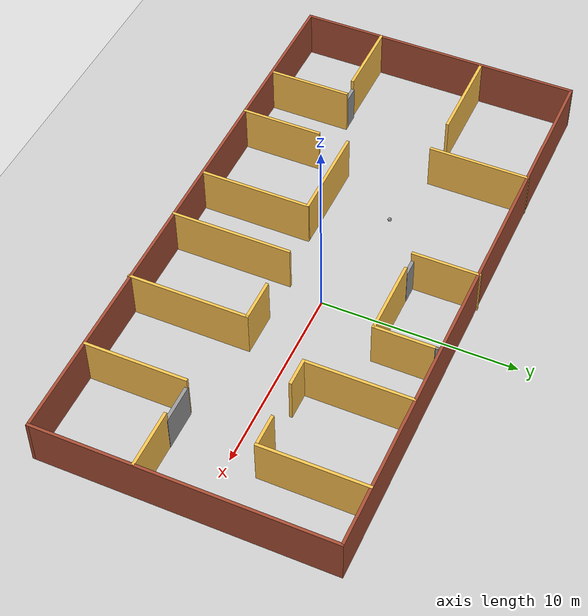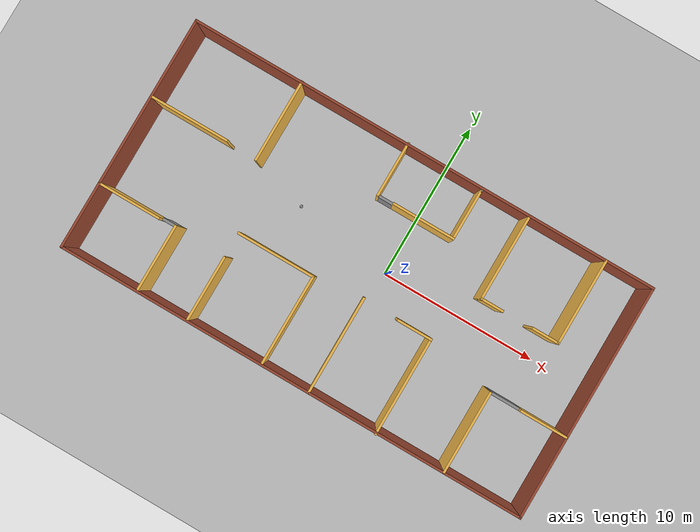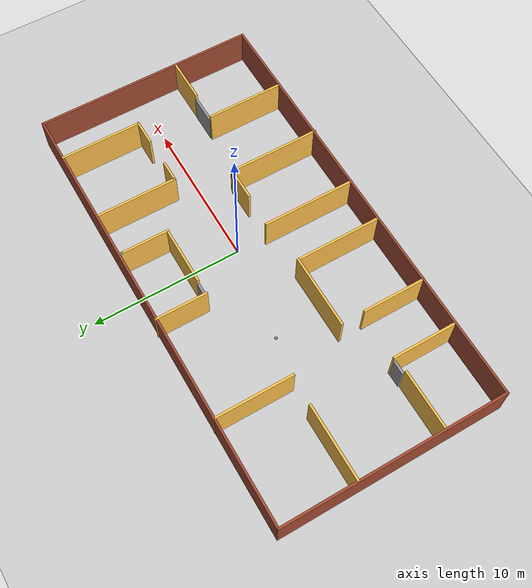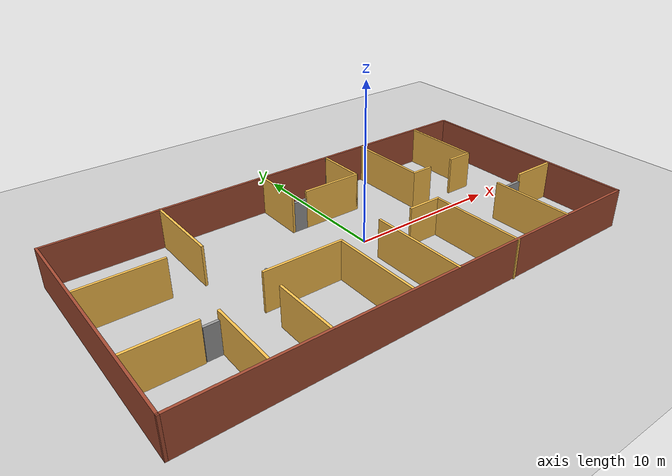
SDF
<sdf version="1.6">
 <world name="default">
  <light name="sun" type="directional">
   <pose>0 0 10 0 -0 0</pose>
   <diffuse>0.8 0.8 0.8 1</diffuse>
   <specular>0.2 0.2 0.2 1</specular>
   <attenuation>
    <range>1000</range>
    <constant>0.9</constant>
    <linear>0.01</linear>
    <quadratic>0.001</quadratic>
   </attenuation>
   <direction>-0.5 0.1 -0.9</direction>
  </light>
  <model name="ground_plane">
   <static>1</static>
   <link name="link">
    <collision name="collision">
     <geometry><plane><normal>0 0 1</normal><size>100 100</size></plane></geometry>
     <surface><friction><ode><mu>100</mu><mu2>50</mu2></ode></friction></surface>
    </collision>
    <visual name="visual">
     <cast_shadows>0</cast_shadows>
     <geometry><plane><normal>0 0 1</normal><size>100 100</size></plane></geometry>
     <material>
      <script><uri>file://media/materials/scripts/gazebo.material</uri><name>Gazebo/Grey</name></script>
     </material>
    </visual>
   </link>
  </model>
  <gravity>0 0 -9.8</gravity>
  <magnetic_field>6e-06 2.3e-05 -4.2e-05</magnetic_field>
  <atmosphere type="adiabatic"/>
  <physics name="default_physics" default="0" type="ode">
   <max_step_size>0.001</max_step_size>
   <real_time_factor>1</real_time_factor>
   <real_time_update_rate>1000</real_time_update_rate>
  </physics>
  <scene><ambient>0.4 0.4 0.4 1</ambient><background>0.7 0.7 0.7 1</background><shadows>1</shadows></scene>
  <audio><device>default</device></audio>
  <spherical_coordinates>
   <surface_model>EARTH_WGS84</surface_model>
   <latitude_deg>0</latitude_deg>
   <longitude_deg>0</longitude_deg>
   <elevation>0</elevation>
   <heading_deg>0</heading_deg>
  </spherical_coordinates>
  <model name="Project2Building">
   <pose>-1.57581 -0.540296 0 0 -0 0</pose>
   <link name="Door_0">
    <collision name="Door_0_Collision">
     <geometry><box><size>0.9 0.17 2</size></box></geometry>
     <pose>0 0 1 0 -0 0</pose>
    </collision>
    <visual name="Door_0_Visual">
     <pose>0 0 1 0 -0 0</pose>
     <geometry><box><size>0.9 0.17 2</size></box></geometry>
     <material>
      <script><uri>file://media/materials/scripts/gazebo.material</uri><name>Gazebo/Grey</name></script>
     </material>
    </visual>
    <pose>-10.4894 -3.20405 0 0 -0 0</pose>
   </link>
   <link name="Door_1">
    <collision name="Door_1_Collision">
     <geometry><box><size>2 0.17 2</size></box></geometry>
     <pose>0 0 1 0 -0 0</pose>
    </collision>
    <visual name="Door_1_Visual">
     <pose>0 0 1 0 -0 0</pose>
     <geometry><box><size>2 0.17 2</size></box></geometry>
     <material>
      <script><uri>file://media/materials/scripts/gazebo.material</uri><name>Gazebo/Grey</name></script>
     </material>
    </visual>
    <pose>11.0142 -2.25974 0 0 -0 0</pose>
   </link>
   <link name="Door_2">
    <collision name="Door_2_Collision">
     <geometry><box><size>0.9 0.17 2</size></box></geometry>
     <pose>0 0 1 0 -0 0</pose>
    </collision>
    <visual name="Door_2_Visual">
     <pose>0 0 1 0 -0 0</pose>
     <geometry><box><size>0.9 0.17 2</size></box></geometry>
     <material>
      <script><uri>file://media/materials/scripts/gazebo.material</uri><name>Gazebo/Grey</name></script>
     </material>
    </visual>
    <pose>-0.550253 4.14898 0 0 -0 3.14001</pose>
   </link>
   <link name="Wall_0">
    <collision name="Wall_0_Collision">
     <geometry><box><size>15 0.15 2.5</size></box></geometry>
     <pose>0 0 1.25 0 -0 0</pose>
    </collision>
    <visual name="Wall_0_Visual">
     <pose>0 0 1.25 0 -0 0</pose>
     <geometry><box><size>15 0.15 2.5</size></box></geometry>
     <material>
      <script><uri>file://media/materials/scripts/gazebo.material</uri><name>Gazebo/Bricks</name></script>
      <ambient>1 1 1 1</ambient>
     </material>
     <meta><layer>0</layer></meta>
    </visual>
    <pose>-14.925 -0.0005 0 0 -0 1.5708</pose>
   </link>
   <link name="Wall_1">
    <collision name="Wall_1_Collision">
     <geometry><box><size>30 0.15 2.5</size></box></geometry>
     <pose>0 0 1.25 0 -0 0</pose>
    </collision>
    <visual name="Wall_1_Visual">
     <pose>0 0 1.25 0 -0 0</pose>
     <geometry><box><size>30 0.15 2.5</size></box></geometry>
     <material>
      <script><uri>file://media/materials/scripts/gazebo.material</uri><name>Gazebo/Bricks</name></script>
      <ambient>1 1 1 1</ambient>
     </material>
     <meta><layer>0</layer></meta>
    </visual>
    <pose>-0 7.4245 0 0 -0 0</pose>
   </link>
   <link name="Wall_11">
    <collision name="Wall_11_Collision">
     <geometry><box><size>5.25 0.15 2.5</size></box></geometry>
     <pose>0 0 1.25 0 -0 0</pose>
    </collision>
    <visual name="Wall_11_Visual">
     <pose>0 0 1.25 0 -0 0</pose>
     <geometry><box><size>5.25 0.15 2.5</size></box></geometry>
     <material>
      <script><uri>file://media/materials/scripts/gazebo.material</uri><name>Gazebo/Grey</name></script>
      <ambient>1 0.764706 0.305882 1</ambient>
     </material>
     <meta><layer>0</layer></meta>
    </visual>
    <pose>-8.00834 4.89904 0 0 -0 -1.5708</pose>
   </link>
   <link name="Wall_13">
    <collision name="Wall_13_Collision">
     <geometry><box><size>3.5 0.15 2.5</size></box></geometry>
     <pose>0 0 1.25 0 -0 0</pose>
    </collision>
    <visual name="Wall_13_Visual">
     <pose>0 0 1.25 0 -0 0</pose>
     <geometry><box><size>3.5 0.15 2.5</size></box></geometry>
     <material>
      <script><uri>file://media/materials/scripts/gazebo.material</uri><name>Gazebo/Grey</name></script>
      <ambient>1 0.764706 0.305882 1</ambient>
     </material>
     <meta><layer>0</layer></meta>
    </visual>
    <pose>-1.07455 5.8067 0 0 -0 1.5708</pose>
   </link>
   <link name="Wall_15">
    <collision name="Wall_15_Collision">
     <geometry><box><size>4 0.15 2.5</size></box></geometry>
     <pose>0 0 1.25 0 -0 0</pose>
    </collision>
    <visual name="Wall_15_Visual">
     <pose>0 0 1.25 0 -0 0</pose>
     <geometry><box><size>4 0.15 2.5</size></box></geometry>
     <material>
      <script><uri>file://media/materials/scripts/gazebo.material</uri><name>Gazebo/Grey</name></script>
      <ambient>1 0.764706 0.305882 1</ambient>
     </material>
     <meta><layer>0</layer></meta>
    </visual>
    <pose>1.89517 4.14719 0 0 -0 0</pose>
   </link>
   <link name="Wall_16">
    <collision name="Wall_16_Collision">
     <geometry><box><size>3.25 0.15 2.5</size></box></geometry>
     <pose>0 0 1.25 0 -0 0</pose>
    </collision>
    <visual name="Wall_16_Visual">
     <pose>0 0 1.25 0 -0 0</pose>
     <geometry><box><size>3.25 0.15 2.5</size></box></geometry>
     <material>
      <script><uri>file://media/materials/scripts/gazebo.material</uri><name>Gazebo/Grey</name></script>
      <ambient>1 0.764706 0.305882 1</ambient>
     </material>
     <meta><layer>0</layer></meta>
    </visual>
    <pose>3.82017 5.69719 0 0 -0 1.5708</pose>
   </link>
   <link name="Wall_17">
    <collision name="Wall_17_Collision">
     <geometry><box><size>0.15 0.15 2.5</size></box></geometry>
     <pose>0 0 1.25 0 -0 0</pose>
    </collision>
    <visual name="Wall_17_Visual">
     <pose>0 0 1.25 0 -0 0</pose>
     <geometry><box><size>0.15 0.15 2.5</size></box></geometry>
     <material>
      <script><uri>file://media/materials/scripts/gazebo.material</uri><name>Gazebo/Grey</name></script>
      <ambient>1 1 1 1</ambient>
     </material>
     <meta><layer>0</layer></meta>
    </visual>
    <pose>3.82017 7.24719 0 0 -0 0</pose>
   </link>
   <link name="Wall_2">
    <collision name="Wall_2_Collision">
     <geometry><box><size>15 0.15 2.5</size></box></geometry>
     <pose>0 0 1.25 0 -0 0</pose>
    </collision>
    <visual name="Wall_2_Visual">
     <pose>0 0 1.25 0 -0 0</pose>
     <geometry><box><size>15 0.15 2.5</size></box></geometry>
     <material>
      <script><uri>file://media/materials/scripts/gazebo.material</uri><name>Gazebo/Bricks</name></script>
      <ambient>1 1 1 1</ambient>
     </material>
     <meta><layer>0</layer></meta>
    </visual>
    <pose>14.925 -0.0005 0 0 -0 -1.5708</pose>
   </link>
   <link name="Wall_21">
    <collision name="Wall_21_Collision">
     <geometry><box><size>0.25 0.15 2.5</size></box></geometry>
     <pose>0 0 1.25 0 -0 0</pose>
    </collision>
    <visual name="Wall_21_Visual">
     <pose>0 0 1.25 0 -0 0</pose>
     <geometry><box><size>0.25 0.15 2.5</size></box></geometry>
     <material>
      <script><uri>file://media/materials/scripts/gazebo.material</uri><name>Gazebo/Grey</name></script>
      <ambient>1 1 1 1</ambient>
     </material>
     <meta><layer>0</layer></meta>
    </visual>
    <pose>3.82017 7.29719 0 0 -0 1.5708</pose>
   </link>
   <link name="Wall_23">
    <collision name="Wall_23_Collision">
     <geometry><box><size>5.5 0.15 2.5</size></box></geometry>
     <pose>0 0 1.25 0 -0 0</pose>
    </collision>
    <visual name="Wall_23_Visual">
     <pose>0 0 1.25 0 -0 0</pose>
     <geometry><box><size>5.5 0.15 2.5</size></box></geometry>
     <material>
      <script><uri>file://media/materials/scripts/gazebo.material</uri><name>Gazebo/Grey</name></script>
      <ambient>1 0.764706 0.305882 1</ambient>
     </material>
     <meta><layer>0</layer></meta>
    </visual>
    <pose>6.89909 4.70846 0 0 -0 -1.5708</pose>
   </link>
   <link name="Wall_24">
    <collision name="Wall_24_Collision">
     <geometry><box><size>1.5 0.15 2.5</size></box></geometry>
     <pose>0 0 1.25 0 -0 0</pose>
    </collision>
    <visual name="Wall_24_Visual">
     <pose>0 0 1.25 0 -0 0</pose>
     <geometry><box><size>1.5 0.15 2.5</size></box></geometry>
     <material>
      <script><uri>file://media/materials/scripts/gazebo.material</uri><name>Gazebo/Grey</name></script>
      <ambient>1 0.764706 0.305882 1</ambient>
     </material>
     <meta><layer>0</layer></meta>
    </visual>
    <pose>7.57409 2.03346 0 0 -0 0</pose>
   </link>
   <link name="Wall_26">
    <collision name="Wall_26_Collision">
     <geometry><box><size>1.75 0.15 2.5</size></box></geometry>
     <pose>0 0 1.25 0 -0 0</pose>
    </collision>
    <visual name="Wall_26_Visual">
     <pose>0 0 1.25 0 -0 0</pose>
     <geometry><box><size>1.75 0.15 2.5</size></box></geometry>
     <material>
      <script><uri>file://media/materials/scripts/gazebo.material</uri><name>Gazebo/Grey</name></script>
      <ambient>1 0.764706 0.305882 1</ambient>
     </material>
     <meta><layer>0</layer></meta>
    </visual>
    <pose>11.0643 2.06422 0 0 -0 0</pose>
   </link>
   <link name="Wall_27">
    <collision name="Wall_27_Collision">
     <geometry><box><size>5.5 0.15 2.5</size></box></geometry>
     <pose>0 0 1.25 0 -0 0</pose>
    </collision>
    <visual name="Wall_27_Visual">
     <pose>0 0 1.25 0 -0 0</pose>
     <geometry><box><size>5.5 0.15 2.5</size></box></geometry>
     <material>
      <script><uri>file://media/materials/scripts/gazebo.material</uri><name>Gazebo/Grey</name></script>
      <ambient>1 0.764706 0.305882 1</ambient>
     </material>
     <meta><layer>0</layer></meta>
    </visual>
    <pose>11.8643 4.73923 0 0 -0 1.5708</pose>
   </link>
   <link name="Wall_29">
    <collision name="Wall_29_Collision">
     <geometry><box><size>5.25 0.15 2.5</size></box></geometry>
     <pose>0 0 1.25 0 -0 0</pose>
    </collision>
    <visual name="Wall_29_Visual">
     <pose>0 0 1.25 0 -0 0</pose>
     <geometry><box><size>5.25 0.15 2.5</size></box></geometry>
     <material>
      <script><uri>file://media/materials/scripts/gazebo.material</uri><name>Gazebo/Grey</name></script>
      <ambient>1 0.764706 0.305882 1</ambient>
     </material>
     <meta><layer>0</layer></meta>
    </visual>
    <pose>9.98388 -4.82735 0 0 -0 -1.5708</pose>
   </link>
   <link name="Wall_3">
    <collision name="Wall_3_Collision">
     <geometry><box><size>30 0.15 2.5</size></box></geometry>
     <pose>0 0 1.25 0 -0 0</pose>
    </collision>
    <visual name="Wall_3_Visual">
     <pose>0 0 1.25 0 -0 0</pose>
     <geometry><box><size>30 0.15 2.5</size></box></geometry>
     <material>
      <script><uri>file://media/materials/scripts/gazebo.material</uri><name>Gazebo/Bricks</name></script>
      <ambient>1 1 1 1</ambient>
     </material>
     <meta><layer>0</layer></meta>
    </visual>
    <pose>-0 -7.4255 0 0 -0 3.14159</pose>
   </link>
   <link name="Wall_31">
    <collision name="Wall_31_Collision">
     <geometry><box><size>3 0.15 2.5</size></box></geometry>
     <pose>0 0 1.25 0 -0 0</pose>
    </collision>
    <visual name="Wall_31_Visual">
     <pose>0 0 1.25 0 -0 0</pose>
     <geometry><box><size>3 0.15 2.5</size></box></geometry>
     <material>
      <script><uri>file://media/materials/scripts/gazebo.material</uri><name>Gazebo/Grey</name></script>
      <ambient>1 0.764706 0.305882 1</ambient>
     </material>
     <meta><layer>0</layer></meta>
    </visual>
    <pose>13.445 -2.26419 0 0 -0 0</pose>
   </link>
   <link name="Wall_33">
    <collision name="Wall_33_Collision">
     <geometry><box><size>4.25 0.15 2.5</size></box></geometry>
     <pose>0 0 1.25 0 -0 0</pose>
    </collision>
    <visual name="Wall_33_Visual">
     <pose>0 0 1.25 0 -0 0</pose>
     <geometry><box><size>4.25 0.15 2.5</size></box></geometry>
     <material>
      <script><uri>file://media/materials/scripts/gazebo.material</uri><name>Gazebo/Grey</name></script>
      <ambient>1 0.764706 0.305882 1</ambient>
     </material>
     <meta><layer>0</layer></meta>
    </visual>
    <pose>-6.72464 -5.35958 0 0 -0 1.5708</pose>
   </link>
   <link name="Wall_35">
    <collision name="Wall_35_Collision">
     <geometry><box><size>5 0.15 2.5</size></box></geometry>
     <pose>0 0 1.25 0 -0 0</pose>
    </collision>
    <visual name="Wall_35_Visual">
     <pose>0 0 1.25 0 -0 0</pose>
     <geometry><box><size>5 0.15 2.5</size></box></geometry>
     <material>
      <script><uri>file://media/materials/scripts/gazebo.material</uri><name>Gazebo/Grey</name></script>
      <ambient>1 0.764706 0.305882 1</ambient>
     </material>
     <meta><layer>0</layer></meta>
    </visual>
    <pose>-4.29964 -1.70535 0 0 -0 0</pose>
   </link>
   <link name="Wall_36">
    <collision name="Wall_36_Collision">
     <geometry><box><size>5.75 0.15 2.5</size></box></geometry>
     <pose>0 0 1.25 0 -0 0</pose>
    </collision>
    <visual name="Wall_36_Visual">
     <pose>0 0 1.25 0 -0 0</pose>
     <geometry><box><size>5.75 0.15 2.5</size></box></geometry>
     <material>
      <script><uri>file://media/materials/scripts/gazebo.material</uri><name>Gazebo/Grey</name></script>
      <ambient>1 0.764706 0.305882 1</ambient>
     </material>
     <meta><layer>0</layer></meta>
    </visual>
    <pose>-1.87464 -4.50535 0 0 -0 -1.5708</pose>
   </link>
   <link name="Wall_38">
    <collision name="Wall_38_Collision">
     <geometry><box><size>6.25 0.15 2.5</size></box></geometry>
     <pose>0 0 1.25 0 -0 0</pose>
    </collision>
    <visual name="Wall_38_Visual">
     <pose>0 0 1.25 0 -0 0</pose>
     <geometry><box><size>6.25 0.15 2.5</size></box></geometry>
     <material>
      <script><uri>file://media/materials/scripts/gazebo.material</uri><name>Gazebo/Grey</name></script>
      <ambient>1 0.764706 0.305882 1</ambient>
     </material>
     <meta><layer>0</layer></meta>
    </visual>
    <pose>1.20466 -4.35958 0 0 -0 1.5708</pose>
   </link>
   <link name="Wall_40">
    <collision name="Wall_40_Collision">
     <geometry><box><size>2.25 0.15 2.5</size></box></geometry>
     <pose>0 0 1.25 0 -0 0</pose>
    </collision>
    <visual name="Wall_40_Visual">
     <pose>0 0 1.25 0 -0 0</pose>
     <geometry><box><size>2.25 0.15 2.5</size></box></geometry>
     <material>
      <script><uri>file://media/materials/scripts/gazebo.material</uri><name>Gazebo/Grey</name></script>
      <ambient>1 0.764706 0.305882 1</ambient>
     </material>
     <meta><layer>0</layer></meta>
    </visual>
    <pose>4.56062 -1.3817 0 0 -0 0</pose>
   </link>
   <link name="Wall_41">
    <collision name="Wall_41_Collision">
     <geometry><box><size>6.25 0.15 2.5</size></box></geometry>
     <pose>0 0 1.25 0 -0 0</pose>
    </collision>
    <visual name="Wall_41_Visual">
     <pose>0 0 1.25 0 -0 0</pose>
     <geometry><box><size>6.25 0.15 2.5</size></box></geometry>
     <material>
      <script><uri>file://media/materials/scripts/gazebo.material</uri><name>Gazebo/Grey</name></script>
      <ambient>1 0.764706 0.305882 1</ambient>
     </material>
     <meta><layer>0</layer></meta>
    </visual>
    <pose>5.61062 -4.4317 0 0 -0 -1.5708</pose>
   </link>
   <link name="Wall_5">
    <collision name="Wall_5_Collision">
     <geometry><box><size>4 0.15 2.5</size></box></geometry>
     <pose>0 0 1.25 0 -0 0</pose>
    </collision>
    <visual name="Wall_5_Visual">
     <pose>0 0 1.25 0 -0 0</pose>
     <geometry><box><size>4 0.15 2.5</size></box></geometry>
     <material>
      <script><uri>file://media/materials/scripts/gazebo.material</uri><name>Gazebo/Grey</name></script>
      <ambient>1 0.764706 0.305882 1</ambient>
     </material>
     <meta><layer>0</layer></meta>
    </visual>
    <pose>-12.9899 -3.26434 0 0 -0 0</pose>
   </link>
   <link name="Wall_7">
    <collision name="Wall_7_Collision">
     <geometry><box><size>4.25 0.15 2.5</size></box></geometry>
     <pose>0 0 1.25 0 -0 0</pose>
    </collision>
    <visual name="Wall_7_Visual">
     <pose>0 0 1.25 0 -0 0</pose>
     <geometry><box><size>4.25 0.15 2.5</size></box></geometry>
     <material>
      <script><uri>file://media/materials/scripts/gazebo.material</uri><name>Gazebo/Grey</name></script>
      <ambient>1 0.764706 0.305882 1</ambient>
     </material>
     <meta><layer>0</layer></meta>
    </visual>
    <pose>-9.99331 -5.23276 0 0 -0 -1.5708</pose>
   </link>
   <link name="Wall_9">
    <collision name="Wall_9_Collision">
     <geometry><box><size>5 0.15 2.5</size></box></geometry>
     <pose>0 0 1.25 0 -0 0</pose>
    </collision>
    <visual name="Wall_9_Visual">
     <pose>0 0 1.25 0 -0 0</pose>
     <geometry><box><size>5 0.15 2.5</size></box></geometry>
     <material>
      <script><uri>file://media/materials/scripts/gazebo.material</uri><name>Gazebo/Grey</name></script>
      <ambient>1 0.764706 0.305882 1</ambient>
     </material>
     <meta><layer>0</layer></meta>
    </visual>
    <pose>-12.4355 2.44584 0 0 -0 0</pose>
   </link>
   <static>1</static>
  </model>
  <model name="my_ball">
   <link name="link_0">
    <inertial>
     <mass>1</mass>
     <inertia><ixx>0.1</ixx><ixy>0</ixy><ixz>0</ixz><iyy>0.1</iyy><iyz>0</iyz><izz>0.1</izz></inertia>
    </inertial>
    <visual name="visual">
     <geometry><sphere><radius>0.1</radius></sphere></geometry>
     <material>
      <lighting>1</lighting>
      <script><uri>file://media/materials/scripts/gazebo.material</uri><name>Gazebo/Grey</name></script>
      <shader type="vertex"><normal_map>__default__</normal_map></shader>
      <ambient>1 1 1 1</ambient>
      <diffuse>1 1 1 1</diffuse>
      <specular>1 1 1 1</specular>
      <emissive>1 1 1 1</emissive>
     </material>
    </visual>
    <collision name="collision">
     <geometry><sphere><radius>0.1</radius></sphere></geometry>
     <surface>
      <friction>
       <ode><mu>1</mu><mu2>1</mu2><fdir1>0 0 0</fdir1><slip1>0</slip1><slip2>0</slip2></ode>
       <torsional>
        <coefficient>1</coefficient>
        <patch_radius>0</patch_radius>
        <surface_radius>0</surface_radius>
        <use_patch_radius>1</use_patch_radius>
        <ode><slip>0</slip></ode>
       </torsional>
      </friction>
      <bounce><restitution_coefficient>0</restitution_coefficient><threshold>1e+06</threshold></bounce>
      <contact>
       <collide_without_contact>0</collide_without_contact>
       <collide_without_contact_bitmask>1</collide_without_contact_bitmask>
       <collide_bitmask>1</collide_bitmask>
       <ode>
        <soft_cfm>0</soft_cfm>
        <soft_erp>0.2</soft_erp>
        <kp>1e+13</kp>
        <kd>1</kd>
        <max_vel>0.01</max_vel>
        <min_depth>0</min_depth>
       </ode>
       <bullet>
        <split_impulse>1</split_impulse>
        <split_impulse_penetration_threshold>-0.01</split_impulse_penetration_threshold>
        <soft_cfm>0</soft_cfm>
        <soft_erp>0.2</soft_erp>
        <kp>1e+13</kp>
        <kd>1</kd>
       </bullet>
      </contact>
     </surface>
    </collision>
   </link>
   <static>0</static>
   <pose>-6.3078 0.953529 0.1 0 -0 0</pose>
  </model>
 </world>
</sdf>
